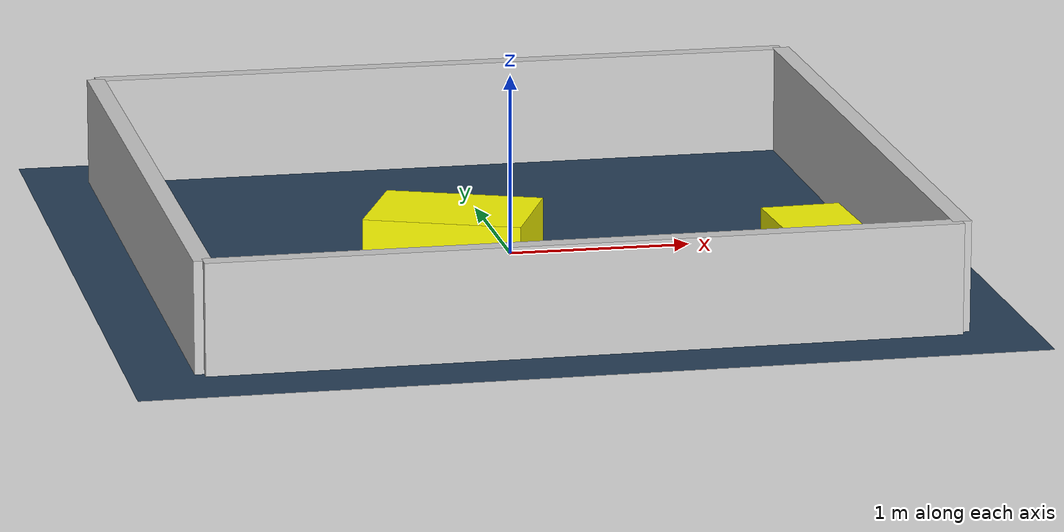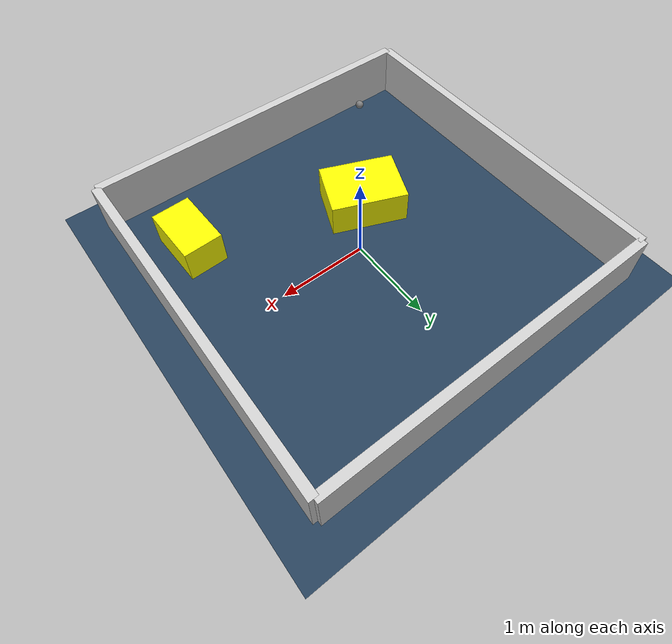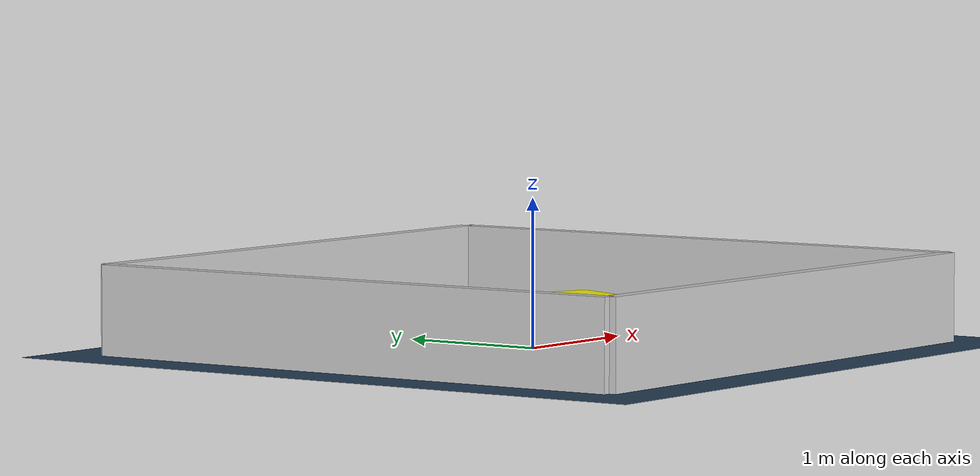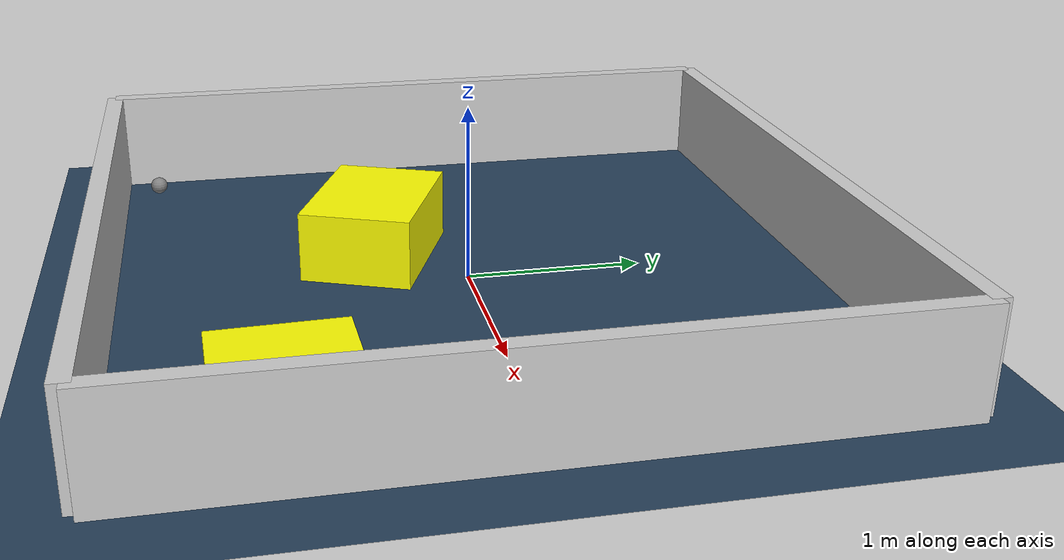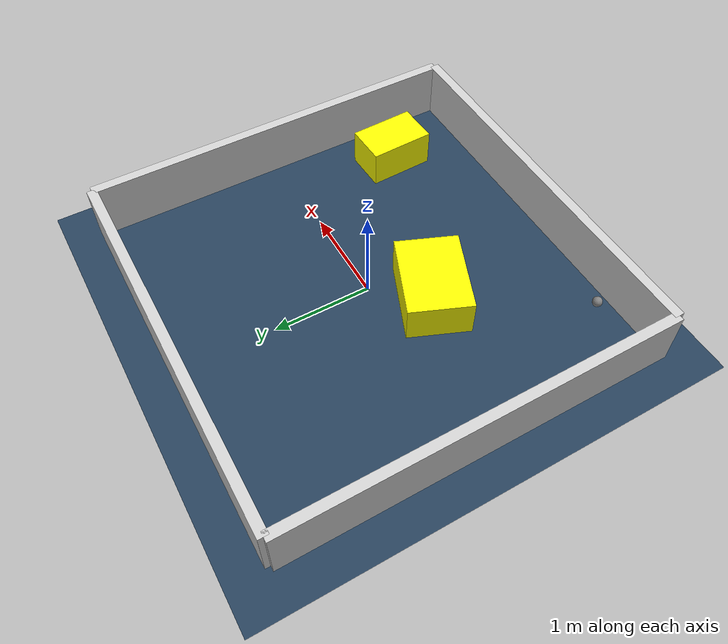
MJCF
<?xml version="1.0" ?>
<mujoco model="generated_environment">
  <option timestep="0.01" integrator="RK4" cone="elliptic"/>
  <default>
    <geom density="1"/>
  </default>
  <asset>
    <texture builtin="gradient" height="3072" rgb1="0.3 0.5 0.7" rgb2="0 0 0" type="skybox" width="512"/>
    <texture builtin="checker" height="300" mark="edge" markrgb="0.8 0.8 0.8" name="groundplane" rgb1="0.2 0.3 0.4" rgb2="0.1 0.2 0.3" type="2d" width="300"/>
    <material name="groundplane" reflectance="0.2" texrepeat="5 5" texture="groundplane" texuniform="true"/>
    <material name="robot" rgba="0.0 1.0 0.0 1"/>
  </asset>
  <worldbody>
    <light dir="0 0 -1" directional="true" pos="0 0 1.5"/>
    <geom condim="4" friction="1.0 0.005 0.001" material="groundplane" name="floor" size="0 0 0.05" type="plane"/>
    <body name="walls">
      <geom name="wall_1" condim="4" pos="-2.0 0.0 0.3" rgba="0.800000011920929 0.800000011920929 0.800000011920929 1.0" size="0.05 2.0 0.3" type="box"/>
      <geom name="wall_2" condim="4" pos="2.0 0.0 0.3" rgba="0.800000011920929 0.800000011920929 0.800000011920929 1.0" size="0.05 2.0 0.3" type="box"/>
      <geom name="wall_3" condim="4" pos="0.0 -2.0 0.3" rgba="0.800000011920929 0.800000011920929 0.800000011920929 1.0" size="2.0 0.05 0.3" type="box"/>
      <geom name="wall_4" condim="4" pos="0.0 2.0 0.3" rgba="0.800000011920929 0.800000011920929 0.800000011920929 1.0" size="2.0 0.05 0.3" type="box"/>
    </body>
    <body name="robot">
      <joint name="joint_x" type="slide" pos="0 0 0" axis="1 0 0"/>
      <joint name="joint_y" type="slide" pos="0 0 0" axis="0 1 0"/>
      <geom name="robot" type="sphere" pos="-1.33598325516602 -1.734084844077623 0.2" size="0.05" mass="5." friction="1.0 0.005 0.0001" condim="4"/>
      <site name="sensor_ball"/>
    </body>
    <body name="obstacle_1_movable">
      <geom name="obstacle_1_movable" condim="4" pos="-0.41006493676060174 -0.48230036128731046 0.2" euler="0 0 247.68171525519247" friction="1.0 0.005 0.001" rgba="1 1 0 1" size="0.31833919679921163 0.4303572816791372 0.2" type="box" mass="0.1"/>
      <joint type="free"/>
    </body>
    <body name="obstacle_2_movable">
      <geom name="obstacle_2_movable" condim="4" pos="1.4443357806439225 -1.1201959478469878 0.2" euler="0 0 92.16863335421026" friction="1.0 0.005 0.001" rgba="1 1 0 1" size="0.3414731244503808 0.2177067042496924 0.2" type="box" mass="0.1"/>
      <joint type="free"/>
    </body>
  </worldbody>
  <actuator>
    <motor name="actuator_x" joint="joint_x" gear="1" ctrlrange="-1 1"/>
    <motor name="actuator_y" joint="joint_y" gear="1" ctrlrange="-1 1"/>
  </actuator>
</mujoco>
